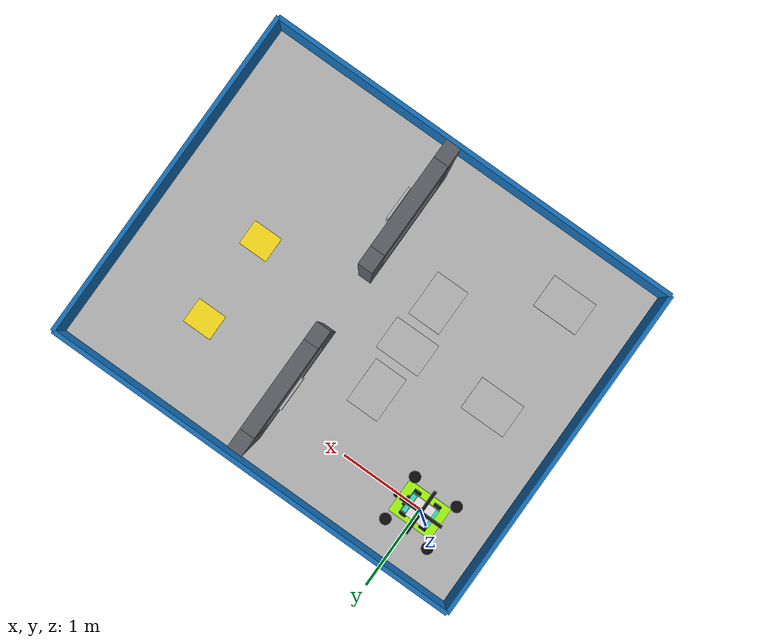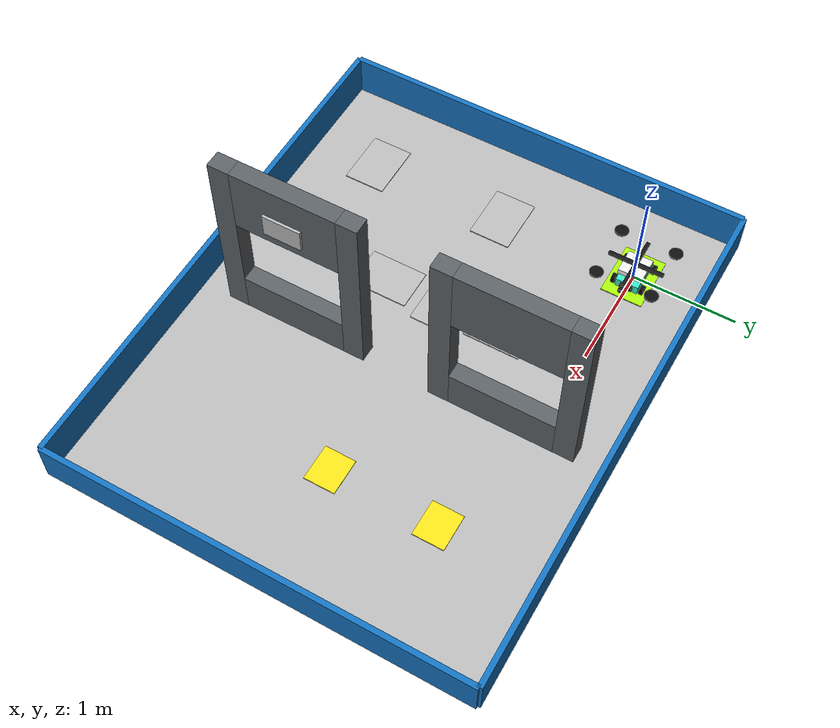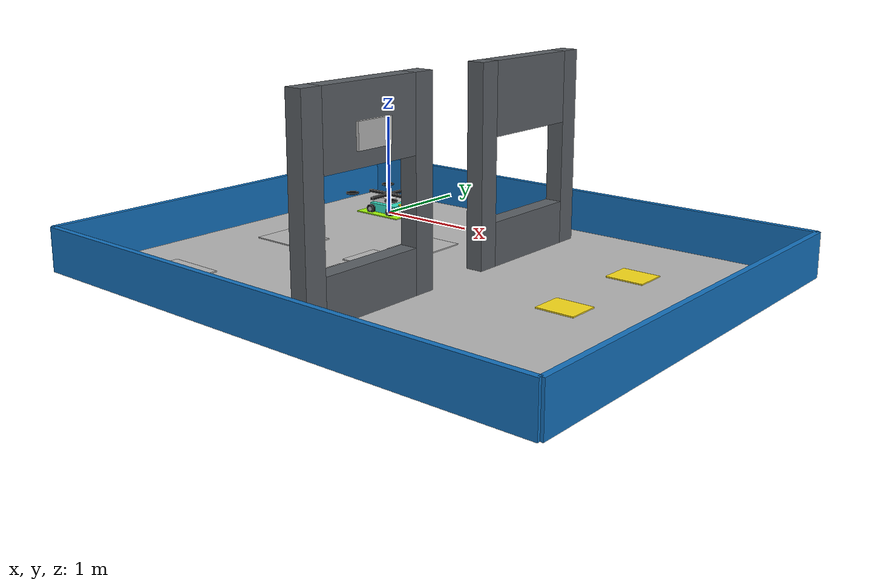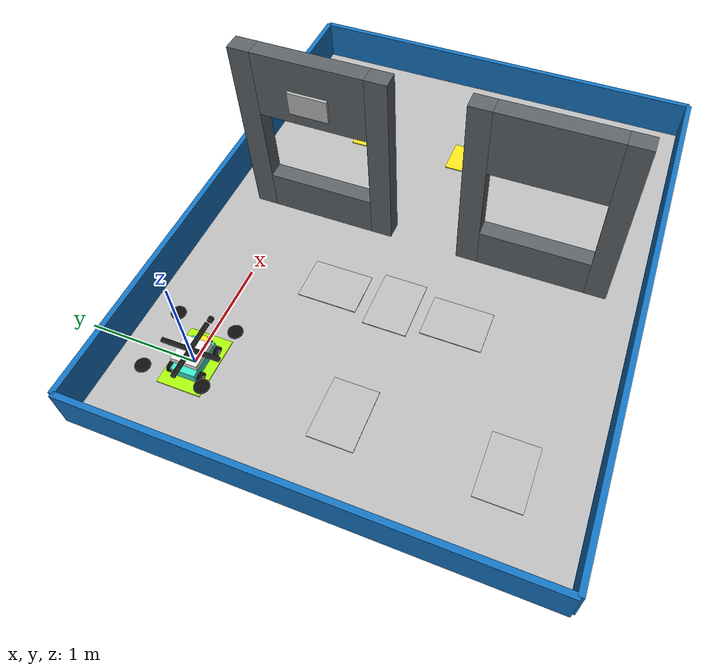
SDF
<?xml version="1.0"?>
<sdf version="1.6">
  <world name="inspection_task1">
    <plugin name="gazebo_ros_state" filename="libgazebo_ros_state.so">
      <ros>
        <namespace>/gazebo</namespace>
      </ros>
      <update_rate>50.0</update_rate>
    </plugin>

    <gravity>0 0 -9.8</gravity>
    <physics type="ode">
      <max_step_size>0.001</max_step_size>
      <real_time_factor>1.0</real_time_factor>
      <real_time_update_rate>1000</real_time_update_rate>
    </physics>

    <scene>
      <ambient>0.58 0.58 0.58 1</ambient>
      <background>0.70 0.76 0.82 1</background>
      <shadows>true</shadows>
    </scene>

    <light name="sun" type="directional">
      <pose>0 0 8 0 0 0</pose>
      <diffuse>0.9 0.9 0.85 1</diffuse>
      <specular>0.2 0.2 0.2 1</specular>
      <direction>-0.4 0.2 -0.9</direction>
    </light>

    <model name="inspection_floor">
      <static>true</static>
      <pose>1.725 -1.35 -0.01 0 0 0</pose>
      <link name="link">
        <collision name="collision">
          <geometry><box><size>5.0 4.0 0.02</size></box></geometry>
          <surface><friction><ode><mu>1.0</mu><mu2>1.0</mu2></ode></friction></surface>
        </collision>
        <visual name="visual">
          <pose>0 0 0.001 0 0 1.5708</pose>
          <geometry><box><size>4.0 5.0 0.02</size></box></geometry>
          <material>
            <script>
              <uri>file:///home/user/文档/xwechat_files/wxid_wi19rlpyn3ag22_be04/msg/file/2026-10/inspection_ws/binary_install/share/ican_inspection_sim/materials/scripts</uri>
              <uri>file:///home/user/文档/xwechat_files/wxid_wi19rlpyn3ag22_be04/msg/file/2026-10/inspection_ws/binary_install/share/ican_inspection_sim/materials/textures</uri>
              <name>InspectionGround</name>
            </script>
          </material>
          <cast_shadows>false</cast_shadows>
        </visual>
      </link>
    </model>

    <model name="north_wall">
      <static>true</static>
      <pose>1.725 0.675 0.2 0 0 0</pose>
      <link name="link">
        <collision name="collision"><geometry><box><size>5.05 0.05 0.4</size></box></geometry></collision>
        <visual name="visual"><geometry><box><size>5.05 0.05 0.4</size></box></geometry><material><ambient>0.08 0.45 0.75 1</ambient><diffuse>0.08 0.45 0.75 1</diffuse></material></visual>
      </link>
    </model>

    <model name="south_wall">
      <static>true</static>
      <pose>1.725 -3.375 0.2 0 0 0</pose>
      <link name="link">
        <collision name="collision"><geometry><box><size>5.05 0.05 0.4</size></box></geometry></collision>
        <visual name="visual"><geometry><box><size>5.05 0.05 0.4</size></box></geometry><material><ambient>0.08 0.45 0.75 1</ambient><diffuse>0.08 0.45 0.75 1</diffuse></material></visual>
      </link>
    </model>

    <model name="west_wall">
      <static>true</static>
      <pose>-0.800 -1.35 0.2 0 0 0</pose>
      <link name="link">
        <collision name="collision"><geometry><box><size>0.05 4.05 0.4</size></box></geometry></collision>
        <visual name="visual"><geometry><box><size>0.05 4.05 0.4</size></box></geometry><material><ambient>0.08 0.45 0.75 1</ambient><diffuse>0.08 0.45 0.75 1</diffuse></material></visual>
      </link>
    </model>

    <model name="east_wall">
      <static>true</static>
      <pose>4.250 -1.35 0.2 0 0 0</pose>
      <link name="link">
        <collision name="collision"><geometry><box><size>0.05 4.05 0.4</size></box></geometry></collision>
        <visual name="visual"><geometry><box><size>0.05 4.05 0.4</size></box></geometry><material><ambient>0.08 0.45 0.75 1</ambient><diffuse>0.08 0.45 0.75 1</diffuse></material></visual>
      </link>
    </model>

    <model name="command_center">
      <static>true</static>
      <pose>0.0 0.0 0.006 0 0 0</pose>
      <link name="link">
        <visual name="visual">
          <geometry><box><size>0.55 0.40 0.012</size></box></geometry>
          <material>
            <ambient>0.65 1.0 0.05 1</ambient>
            <diffuse>0.65 1.0 0.05 1</diffuse>
          </material>
          <cast_shadows>false</cast_shadows>
        </visual>
      </link>
    </model>

    <model name="ground_task_point_0">
      <static>true</static>
      <pose>1.125 -1.35 0.006 0 0 0</pose>
      <link name="link"><visual name="visual"><geometry><box><size>0.55 0.40 0.012</size></box></geometry><material><ambient>0.72 0.72 0.72 1</ambient><diffuse>0.72 0.72 0.72 1</diffuse></material><cast_shadows>false</cast_shadows></visual></link>
    </model>

    <model name="ground_task_point_1">
      <static>true</static>
      <pose>0.0 -1.35 0.006 0 0 0</pose>
      <link name="link"><visual name="visual"><geometry><box><size>0.55 0.40 0.012</size></box></geometry><material><ambient>0.72 0.72 0.72 1</ambient><diffuse>0.72 0.72 0.72 1</diffuse></material><cast_shadows>false</cast_shadows></visual></link>
    </model>

    <model name="ground_task_point_2">
      <static>true</static>
      <pose>0.0 -2.70 0.006 0 0 0</pose>
      <link name="link"><visual name="visual"><geometry><box><size>0.55 0.40 0.012</size></box></geometry><material><ambient>0.72 0.72 0.72 1</ambient><diffuse>0.72 0.72 0.72 1</diffuse></material><cast_shadows>false</cast_shadows></visual></link>
    </model>

    <model name="ground_task_point_3">
      <static>true</static>
      <pose>1.125 -1.925 0.006 0 0 0</pose>
      <link name="link"><visual name="visual"><geometry><box><size>0.40 0.55 0.012</size></box></geometry><material><ambient>0.72 0.72 0.72 1</ambient><diffuse>0.72 0.72 0.72 1</diffuse></material><cast_shadows>false</cast_shadows></visual></link>
    </model>

    <model name="ground_task_point_4">
      <static>true</static>
      <pose>1.125 -0.775 0.006 0 0 0</pose>
      <link name="link"><visual name="visual"><geometry><box><size>0.40 0.55 0.012</size></box></geometry><material><ambient>0.72 0.72 0.72 1</ambient><diffuse>0.72 0.72 0.72 1</diffuse></material><cast_shadows>false</cast_shadows></visual></link>
    </model>

    <model name="window_1">
      <static>true</static>
      <pose>1.925 -0.3275 0 0 0 0</pose>
      <link name="link">
        <collision name="bottom"><pose>0 0 0.20 0 0 0</pose><geometry><box><size>0.16 1.00 0.40</size></box></geometry></collision>
        <visual name="bottom_visual"><pose>0 0 0.20 0 0 0</pose><geometry><box><size>0.16 1.00 0.40</size></box></geometry><material><ambient>0.36 0.38 0.40 1</ambient><diffuse>0.36 0.38 0.40 1</diffuse></material></visual>
        <collision name="top"><pose>0 0 1.475 0 0 0</pose><geometry><box><size>0.16 1.00 0.65</size></box></geometry></collision>
        <visual name="top_visual"><pose>0 0 1.475 0 0 0</pose><geometry><box><size>0.16 1.00 0.65</size></box></geometry><material><ambient>0.36 0.38 0.40 1</ambient><diffuse>0.36 0.38 0.40 1</diffuse></material></visual>
        <collision name="side_negative"><pose>0 -0.60 0.90 0 0 0</pose><geometry><box><size>0.16 0.20 1.80</size></box></geometry></collision>
        <visual name="side_negative_visual"><pose>0 -0.60 0.90 0 0 0</pose><geometry><box><size>0.16 0.20 1.80</size></box></geometry><material><ambient>0.36 0.38 0.40 1</ambient><diffuse>0.36 0.38 0.40 1</diffuse></material></visual>
        <collision name="side_positive"><pose>0 0.60 0.90 0 0 0</pose><geometry><box><size>0.16 0.20 1.80</size></box></geometry></collision>
        <visual name="side_positive_visual"><pose>0 0.60 0.90 0 0 0</pose><geometry><box><size>0.16 0.20 1.80</size></box></geometry><material><ambient>0.36 0.38 0.40 1</ambient><diffuse>0.36 0.38 0.40 1</diffuse></material></visual>
      </link>
    </model>

    <model name="window_2">
      <static>true</static>
      <pose>1.925 -2.3725 0 0 0 0</pose>
      <link name="link">
        <collision name="bottom"><pose>0 0 0.20 0 0 0</pose><geometry><box><size>0.16 1.00 0.40</size></box></geometry></collision>
        <visual name="bottom_visual"><pose>0 0 0.20 0 0 0</pose><geometry><box><size>0.16 1.00 0.40</size></box></geometry><material><ambient>0.36 0.38 0.40 1</ambient><diffuse>0.36 0.38 0.40 1</diffuse></material></visual>
        <collision name="top"><pose>0 0 1.475 0 0 0</pose><geometry><box><size>0.16 1.00 0.65</size></box></geometry></collision>
        <visual name="top_visual"><pose>0 0 1.475 0 0 0</pose><geometry><box><size>0.16 1.00 0.65</size></box></geometry><material><ambient>0.36 0.38 0.40 1</ambient><diffuse>0.36 0.38 0.40 1</diffuse></material></visual>
        <collision name="side_negative"><pose>0 -0.60 0.90 0 0 0</pose><geometry><box><size>0.16 0.20 1.80</size></box></geometry></collision>
        <visual name="side_negative_visual"><pose>0 -0.60 0.90 0 0 0</pose><geometry><box><size>0.16 0.20 1.80</size></box></geometry><material><ambient>0.36 0.38 0.40 1</ambient><diffuse>0.36 0.38 0.40 1</diffuse></material></visual>
        <collision name="side_positive"><pose>0 0.60 0.90 0 0 0</pose><geometry><box><size>0.16 0.20 1.80</size></box></geometry></collision>
        <visual name="side_positive_visual"><pose>0 0.60 0.90 0 0 0</pose><geometry><box><size>0.16 0.20 1.80</size></box></geometry><material><ambient>0.36 0.38 0.40 1</ambient><diffuse>0.36 0.38 0.40 1</diffuse></material></visual>
      </link>
    </model>

    <model name="window_target_1">
      <static>true</static>
      <pose>1.815 -0.3275 1.40 0 0 0</pose>
      <link name="link">
        <visual name="visual"><geometry><box><size>0.025 0.36 0.22</size></box></geometry><material><script><uri>file:///home/user/文档/xwechat_files/wxid_wi19rlpyn3ag22_be04/msg/file/2026-10/inspection_ws/binary_install/share/ican_inspection_sim/materials/scripts</uri><uri>file:///home/user/文档/xwechat_files/wxid_wi19rlpyn3ag22_be04/msg/file/2026-10/inspection_ws/binary_install/share/ican_inspection_sim/materials/textures</uri><name>InspectionWindowTarget1</name></script></material></visual>
      </link>
    </model>

    <model name="window_target_2">
      <static>true</static>
      <pose>2.035 -2.3725 1.40 0 0 0</pose>
      <link name="link">
        <visual name="visual"><geometry><box><size>0.025 0.36 0.22</size></box></geometry><material><script><uri>file:///home/user/文档/xwechat_files/wxid_wi19rlpyn3ag22_be04/msg/file/2026-10/inspection_ws/binary_install/share/ican_inspection_sim/materials/scripts</uri><uri>file:///home/user/文档/xwechat_files/wxid_wi19rlpyn3ag22_be04/msg/file/2026-10/inspection_ws/binary_install/share/ican_inspection_sim/materials/textures</uri><name>InspectionWindowTarget2</name></script></material></visual>
      </link>
    </model>

    <model name="aerial_task_point_1">
      <static>true</static>
      <pose>3.080 -0.320 0.006 0 0 0</pose>
      <link name="link">
        <visual name="visual"><geometry><box><size>0.35 0.30 0.012</size></box></geometry><material><ambient>1.0 0.88 0.10 1</ambient><diffuse>1.0 0.88 0.10 1</diffuse></material><cast_shadows>false</cast_shadows></visual>
      </link>
    </model>

    <model name="aerial_task_point_2">
      <static>true</static>
      <pose>3.080 -1.355 0.006 0 0 0</pose>
      <link name="link">
        <visual name="visual"><geometry><box><size>0.35 0.30 0.012</size></box></geometry><material><ambient>1.0 0.88 0.10 1</ambient><diffuse>1.0 0.88 0.10 1</diffuse></material><cast_shadows>false</cast_shadows></visual>
      </link>
    </model>

    <model name="amphibious_drone">
      <static>false</static>
      <pose>0.0 0.0 0.055 0 0 0</pose>
      <link name="base_footprint">
        <inertial>
          <mass>2.2</mass>
          <inertia><ixx>0.030</ixx><ixy>0</ixy><ixz>0</ixz><iyy>0.036</iyy><iyz>0</iyz><izz>0.052</izz></inertia>
        </inertial>
        <collision name="base_collision"><geometry><box><size>0.34 0.22 0.09</size></box></geometry></collision>
        <visual name="base_visual"><geometry><box><size>0.34 0.22 0.09</size></box></geometry><material><ambient>0.22 0.89 0.78 1</ambient><diffuse>0.22 0.89 0.78 1</diffuse></material></visual>
        <visual name="front_visual"><pose>0.18 0 0.01 0 0 0</pose><geometry><box><size>0.04 0.12 0.04</size></box></geometry><material><ambient>0.05 0.05 0.05 1</ambient><diffuse>0.05 0.05 0.05 1</diffuse></material></visual>
        <visual name="flight_body_visual"><pose>0 0 0.095 0 0 0</pose><geometry><box><size>0.24 0.24 0.055</size></box></geometry><material><ambient>0.92 0.92 0.92 1</ambient><diffuse>0.92 0.92 0.92 1</diffuse></material></visual>
        <visual name="flight_arm_x"><pose>0 0 0.14 0 0 0</pose><geometry><box><size>0.54 0.035 0.025</size></box></geometry><material><ambient>0.08 0.08 0.08 1</ambient><diffuse>0.08 0.08 0.08 1</diffuse></material></visual>
        <visual name="flight_arm_y"><pose>0 0 0.14 0 0 0</pose><geometry><box><size>0.035 0.54 0.025</size></box></geometry><material><ambient>0.08 0.08 0.08 1</ambient><diffuse>0.08 0.08 0.08 1</diffuse></material></visual>
        <visual name="rotor_1"><pose>0.27 0.27 0.16 0 0 0</pose><geometry><cylinder><radius>0.065</radius><length>0.012</length></cylinder></geometry><material><ambient>0.05 0.05 0.05 1</ambient><diffuse>0.05 0.05 0.05 1</diffuse></material></visual>
        <visual name="rotor_2"><pose>0.27 -0.27 0.16 0 0 0</pose><geometry><cylinder><radius>0.065</radius><length>0.012</length></cylinder></geometry><material><ambient>0.05 0.05 0.05 1</ambient><diffuse>0.05 0.05 0.05 1</diffuse></material></visual>
        <visual name="rotor_3"><pose>-0.27 0.27 0.16 0 0 0</pose><geometry><cylinder><radius>0.065</radius><length>0.012</length></cylinder></geometry><material><ambient>0.05 0.05 0.05 1</ambient><diffuse>0.05 0.05 0.05 1</diffuse></material></visual>
        <visual name="rotor_4"><pose>-0.27 -0.27 0.16 0 0 0</pose><geometry><cylinder><radius>0.065</radius><length>0.012</length></cylinder></geometry><material><ambient>0.05 0.05 0.05 1</ambient><diffuse>0.05 0.05 0.05 1</diffuse></material></visual>
        <visual name="lamp_visual"><pose>0.17 0 0.035 0 0 0</pose><geometry><cylinder><radius>0.035</radius><length>0.035</length></cylinder></geometry><material><ambient>1.0 0.88 0.10 1</ambient><diffuse>1.0 0.88 0.10 1</diffuse><emissive>1.0 0.75 0.05 1</emissive></material></visual>
        <visual name="laser_emitter_visual"><pose>0 0 -0.055 0 0 0</pose><geometry><cylinder><radius>0.018</radius><length>0.026</length></cylinder></geometry><material><ambient>0.35 0.02 0.02 1</ambient><diffuse>0.35 0.02 0.02 1</diffuse><emissive>0.80 0.02 0.02 1</emissive></material></visual>
        <visual name="uav_camera_body"><pose>0.320 0 0.130 0 1.5708 0</pose><geometry><cylinder><radius>0.025</radius><length>0.04</length></cylinder></geometry><material><ambient>0.06 0.06 0.065 1</ambient><diffuse>0.06 0.06 0.065 1</diffuse></material></visual>
        <visual name="uav_camera_lens"><pose>0.345 0 0.130 0 1.5708 0</pose><geometry><cylinder><radius>0.014</radius><length>0.006</length></cylinder></geometry><material><ambient>0.02 0.025 0.03 1</ambient><diffuse>0.02 0.025 0.03 1</diffuse><specular>0.4 0.45 0.5 1</specular></material></visual>
        <sensor type="ray" name="rplidar">
          <pose>0.08 0 0.08 0 0 0</pose>
          <visualize>true</visualize>
          <update_rate>8</update_rate>
          <ray><scan><horizontal><samples>360</samples><resolution>1</resolution><min_angle>-3.14</min_angle><max_angle>3.14</max_angle></horizontal></scan><range><min>0.10</min><max>12.0</max><resolution>0.01</resolution></range></ray>
          <plugin name="gazebo_rplidar" filename="libgazebo_ros_ray_sensor.so">
            <ros><remapping>~/out:=/scan</remapping></ros>
            <output_type>sensor_msgs/LaserScan</output_type>
            <frame_name>laser_link</frame_name>
          </plugin>
        </sensor>
        <sensor type="ray" name="uav_3d_lidar">
          <pose>0.12 0 0.18 0 0 0</pose>
          <visualize>false</visualize>
          <update_rate>12</update_rate>
          <ray>
            <scan>
              <horizontal>
                <samples>121</samples>
                <resolution>1</resolution>
                <min_angle>-1.5708</min_angle>
                <max_angle>1.5708</max_angle>
              </horizontal>
              <vertical>
                <samples>21</samples>
                <resolution>1</resolution>
                <min_angle>-0.55</min_angle>
                <max_angle>0.55</max_angle>
              </vertical>
            </scan>
            <range>
              <min>0.08</min>
              <max>4.0</max>
              <resolution>0.01</resolution>
            </range>
          </ray>
          <plugin name="uav_3d_lidar_controller" filename="libgazebo_ros_ray_sensor.so">
            <ros><namespace>/uav</namespace><remapping>~/out:=lidar/points</remapping></ros>
            <output_type>sensor_msgs/PointCloud2</output_type>
            <frame_name>uav/lidar_link</frame_name>
          </plugin>
        </sensor>
        <sensor type="ray" name="uav_downward_laser">
          <pose>0 0 -0.070 0 1.5708 0</pose>
          <visualize>false</visualize>
          <update_rate>20</update_rate>
          <ray>
            <scan>
              <horizontal>
                <samples>3</samples>
                <resolution>1</resolution>
                <min_angle>-0.001</min_angle>
                <max_angle>0.001</max_angle>
              </horizontal>
            </scan>
            <range>
              <min>0.03</min>
              <max>5.0</max>
              <resolution>0.005</resolution>
            </range>
          </ray>
          <plugin name="uav_downward_laser_controller" filename="libgazebo_ros_ray_sensor.so">
            <ros><namespace>/uav</namespace><remapping>~/out:=laser/scan</remapping></ros>
            <output_type>sensor_msgs/LaserScan</output_type>
            <frame_name>uav/laser_link</frame_name>
          </plugin>
        </sensor>
        <sensor type="camera" name="ground_camera">
          <pose>0.16 0 0.11 0 0 0</pose>
          <always_on>true</always_on>
          <visualize>false</visualize>
          <update_rate>30</update_rate>
          <camera name="head"><horizontal_fov>1.3962634</horizontal_fov><image><width>800</width><height>800</height><format>R8G8B8</format></image><clip><near>0.02</near><far>20</far></clip></camera>
          <plugin name="camera_controller" filename="libgazebo_ros_camera.so">
            <ros><remapping>camera/image_raw:=camera/image</remapping><remapping>camera/camera_info:=camera/camera_info</remapping></ros>
            <camera_name>camera</camera_name>
            <frame_name>camera_link</frame_name>
          </plugin>
        </sensor>
        <sensor type="camera" name="uav_camera">
          <pose>0.390 0 0.130 0 0 0</pose>
          <always_on>true</always_on>
          <visualize>false</visualize>
          <update_rate>30</update_rate>
          <camera name="front">
            <horizontal_fov>1.3962634</horizontal_fov>
            <image>
              <width>800</width>
              <height>800</height>
              <format>R8G8B8</format>
            </image>
            <clip>
              <near>0.02</near>
              <far>20</far>
            </clip>
            <noise>
              <type>gaussian</type>
              <mean>0.0</mean>
              <stddev>0.004</stddev>
            </noise>
          </camera>
          <plugin name="uav_camera_controller" filename="libgazebo_ros_camera.so">
            <ros><namespace>/uav</namespace><remapping>camera/image_raw:=camera/image</remapping><remapping>camera/camera_info:=camera/camera_info</remapping></ros>
            <camera_name>camera</camera_name>
            <frame_name>uav/camera_link</frame_name>
            <hack_baseline>0.07</hack_baseline>
            <distortion_k1>0.0</distortion_k1>
            <distortion_k2>0.0</distortion_k2>
            <distortion_k3>0.0</distortion_k3>
            <distortion_t1>0.0</distortion_t1>
            <distortion_t2>0.0</distortion_t2>
          </plugin>
        </sensor>
      </link>
      <link name="front_left_wheel">
        <pose>0.13 0.14 -0.01 0 0 0</pose>
        <inertial>
          <mass>0.08</mass>
          <inertia><ixx>0.00008</ixx><ixy>0</ixy><ixz>0</ixz><iyy>0.00008</iyy><iyz>0</iyz><izz>0.00008</izz></inertia>
        </inertial>
        <collision name="collision">
          <pose>0 0 0 1.5708 0 0</pose>
          <geometry><cylinder><radius>0.045</radius><length>0.035</length></cylinder></geometry>
          <surface><friction><ode><mu>0.8</mu><mu2>0.8</mu2></ode></friction></surface>
        </collision>
        <visual name="tire"><pose>0 0 0 1.5708 0 0</pose><geometry><cylinder><radius>0.045</radius><length>0.035</length></cylinder></geometry><material><ambient>0.04 0.04 0.04 1</ambient><diffuse>0.04 0.04 0.04 1</diffuse></material></visual>
        <visual name="hub"><pose>0 0 0 1.5708 0 0</pose><geometry><cylinder><radius>0.024</radius><length>0.039</length></cylinder></geometry><material><ambient>0.70 0.70 0.72 1</ambient><diffuse>0.70 0.70 0.72 1</diffuse></material></visual>
      </link>
      <link name="front_right_wheel">
        <pose>0.13 -0.14 -0.01 0 0 0</pose>
        <inertial>
          <mass>0.08</mass>
          <inertia><ixx>0.00008</ixx><ixy>0</ixy><ixz>0</ixz><iyy>0.00008</iyy><iyz>0</iyz><izz>0.00008</izz></inertia>
        </inertial>
        <collision name="collision">
          <pose>0 0 0 1.5708 0 0</pose>
          <geometry><cylinder><radius>0.045</radius><length>0.035</length></cylinder></geometry>
          <surface><friction><ode><mu>0.8</mu><mu2>0.8</mu2></ode></friction></surface>
        </collision>
        <visual name="tire"><pose>0 0 0 1.5708 0 0</pose><geometry><cylinder><radius>0.045</radius><length>0.035</length></cylinder></geometry><material><ambient>0.04 0.04 0.04 1</ambient><diffuse>0.04 0.04 0.04 1</diffuse></material></visual>
        <visual name="hub"><pose>0 0 0 1.5708 0 0</pose><geometry><cylinder><radius>0.024</radius><length>0.039</length></cylinder></geometry><material><ambient>0.70 0.70 0.72 1</ambient><diffuse>0.70 0.70 0.72 1</diffuse></material></visual>
      </link>
      <link name="rear_left_wheel">
        <pose>-0.13 0.14 -0.01 0 0 0</pose>
        <inertial>
          <mass>0.08</mass>
          <inertia><ixx>0.00008</ixx><ixy>0</ixy><ixz>0</ixz><iyy>0.00008</iyy><iyz>0</iyz><izz>0.00008</izz></inertia>
        </inertial>
        <collision name="collision">
          <pose>0 0 0 1.5708 0 0</pose>
          <geometry><cylinder><radius>0.045</radius><length>0.035</length></cylinder></geometry>
          <surface><friction><ode><mu>0.8</mu><mu2>0.8</mu2></ode></friction></surface>
        </collision>
        <visual name="tire"><pose>0 0 0 1.5708 0 0</pose><geometry><cylinder><radius>0.045</radius><length>0.035</length></cylinder></geometry><material><ambient>0.04 0.04 0.04 1</ambient><diffuse>0.04 0.04 0.04 1</diffuse></material></visual>
        <visual name="hub"><pose>0 0 0 1.5708 0 0</pose><geometry><cylinder><radius>0.024</radius><length>0.039</length></cylinder></geometry><material><ambient>0.70 0.70 0.72 1</ambient><diffuse>0.70 0.70 0.72 1</diffuse></material></visual>
      </link>
      <link name="rear_right_wheel">
        <pose>-0.13 -0.14 -0.01 0 0 0</pose>
        <inertial>
          <mass>0.08</mass>
          <inertia><ixx>0.00008</ixx><ixy>0</ixy><ixz>0</ixz><iyy>0.00008</iyy><iyz>0</iyz><izz>0.00008</izz></inertia>
        </inertial>
        <collision name="collision">
          <pose>0 0 0 1.5708 0 0</pose>
          <geometry><cylinder><radius>0.045</radius><length>0.035</length></cylinder></geometry>
          <surface><friction><ode><mu>0.8</mu><mu2>0.8</mu2></ode></friction></surface>
        </collision>
        <visual name="tire"><pose>0 0 0 1.5708 0 0</pose><geometry><cylinder><radius>0.045</radius><length>0.035</length></cylinder></geometry><material><ambient>0.04 0.04 0.04 1</ambient><diffuse>0.04 0.04 0.04 1</diffuse></material></visual>
        <visual name="hub"><pose>0 0 0 1.5708 0 0</pose><geometry><cylinder><radius>0.024</radius><length>0.039</length></cylinder></geometry><material><ambient>0.70 0.70 0.72 1</ambient><diffuse>0.70 0.70 0.72 1</diffuse></material></visual>
      </link>
      <joint name="front_left_wheel_joint" type="revolute">
        <parent>base_footprint</parent>
        <child>front_left_wheel</child>
        <axis><xyz>0 1 0</xyz><limit><lower>-10000000000000000</lower><upper>10000000000000000</upper></limit><dynamics><damping>0.02</damping></dynamics></axis>
      </joint>
      <joint name="front_right_wheel_joint" type="revolute">
        <parent>base_footprint</parent>
        <child>front_right_wheel</child>
        <axis><xyz>0 1 0</xyz><limit><lower>-10000000000000000</lower><upper>10000000000000000</upper></limit><dynamics><damping>0.02</damping></dynamics></axis>
      </joint>
      <joint name="rear_left_wheel_joint" type="revolute">
        <parent>base_footprint</parent>
        <child>rear_left_wheel</child>
        <axis><xyz>0 1 0</xyz><limit><lower>-10000000000000000</lower><upper>10000000000000000</upper></limit><dynamics><damping>0.02</damping></dynamics></axis>
      </joint>
      <joint name="rear_right_wheel_joint" type="revolute">
        <parent>base_footprint</parent>
        <child>rear_right_wheel</child>
        <axis><xyz>0 1 0</xyz><limit><lower>-10000000000000000</lower><upper>10000000000000000</upper></limit><dynamics><damping>0.02</damping></dynamics></axis>
      </joint>
      <plugin name="ican_gazebo_mecanum_drive" filename="libican_gazebo_mecanum_drive.so">
        <ros><namespace>/</namespace></ros>
        <update_rate>100</update_rate>
        <publish_rate>50</publish_rate>
        <cmd_timeout>0.5</cmd_timeout>
        <publish_odom>true</publish_odom>
        <publish_odom_tf>true</publish_odom_tf>
        <idle_passthrough>true</idle_passthrough>
        <odometry_frame>odom</odometry_frame>
        <robot_base_frame>base_footprint</robot_base_frame>
        <wheel_radius>0.045</wheel_radius>
        <wheel_base>0.26</wheel_base>
        <track_width>0.28</track_width>
        <max_linear_speed>0.8</max_linear_speed>
        <max_angular_speed>2.5</max_angular_speed>
        <max_wheel_speed>30.0</max_wheel_speed>
        <wheel_torque>2.0</wheel_torque>
        <front_left_joint>front_left_wheel_joint</front_left_joint>
        <front_right_joint>front_right_wheel_joint</front_right_joint>
        <rear_left_joint>rear_left_wheel_joint</rear_left_joint>
        <rear_right_joint>rear_right_wheel_joint</rear_right_joint>
      </plugin>
      <plugin name="ican_gazebo_uav_simple_move" filename="libican_gazebo_uav_simple_move.so">
        <ros><namespace>/uav</namespace></ros>
        <update_rate>100</update_rate>
        <publish_rate>50</publish_rate>
        <cmd_timeout>0.5</cmd_timeout>
        <idle_passthrough>true</idle_passthrough>
        <odometry_frame>odom</odometry_frame>
        <robot_base_frame>uav/base_link</robot_base_frame>
        <min_z>0.03</min_z>
        <max_z>1.8</max_z>
        <laser_visual_period>0.2</laser_visual_period>
        <laser_beam_length>4.0</laser_beam_length>
      </plugin>
    </model>
  </world>
</sdf>
